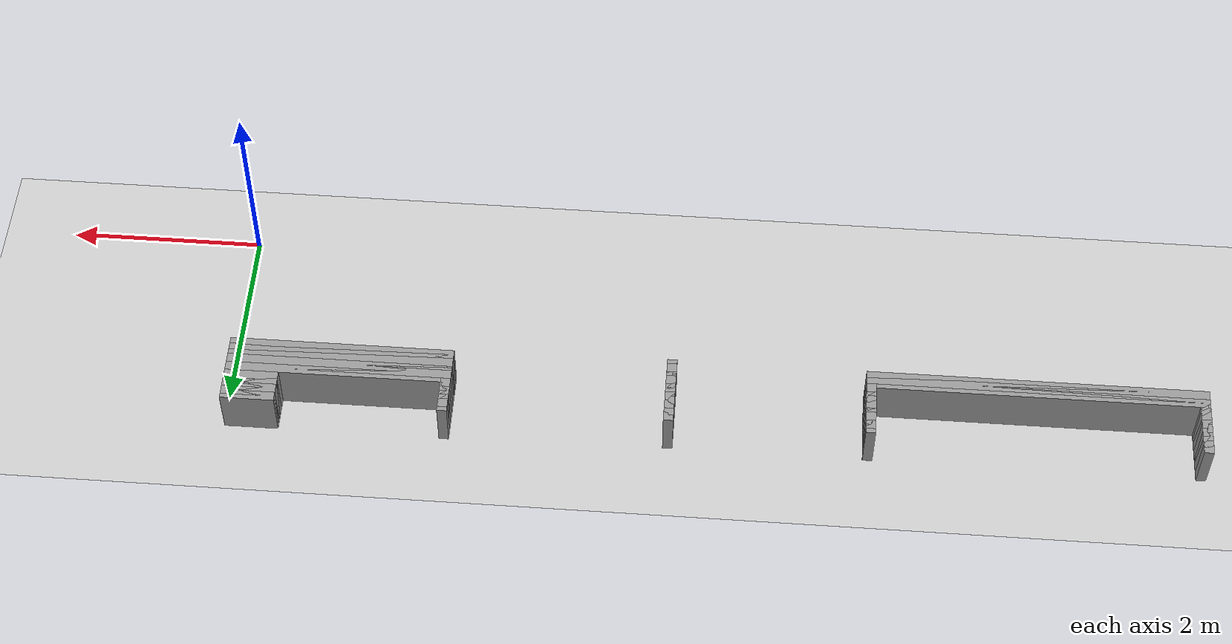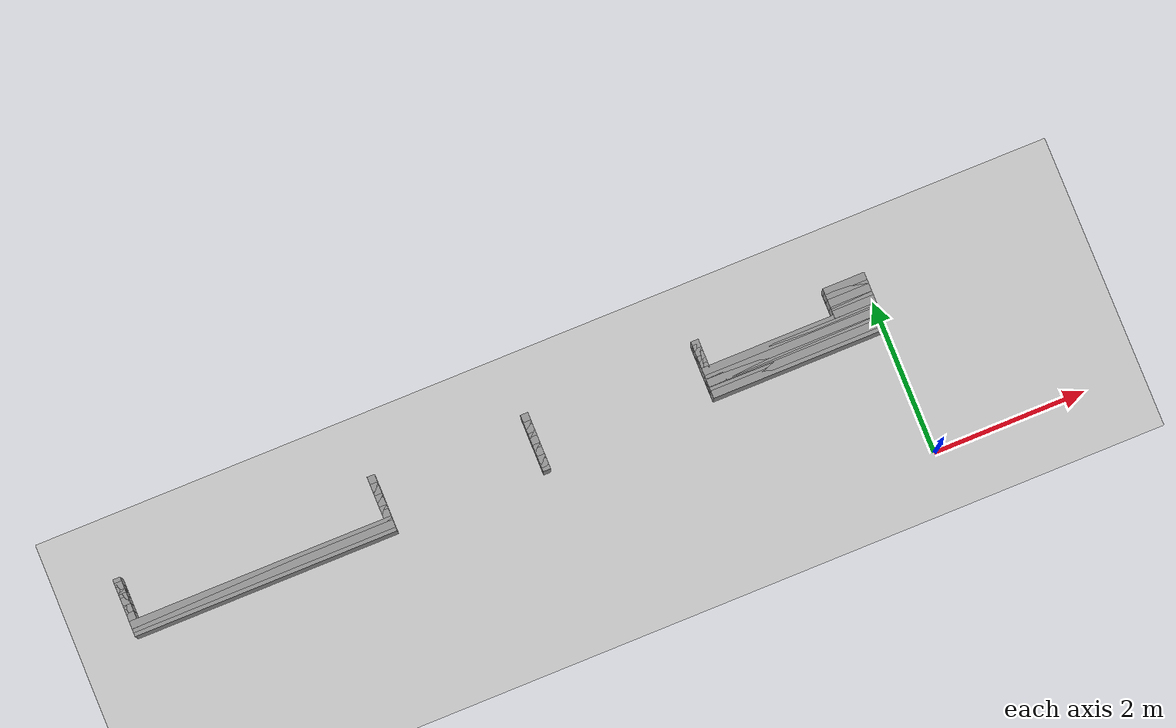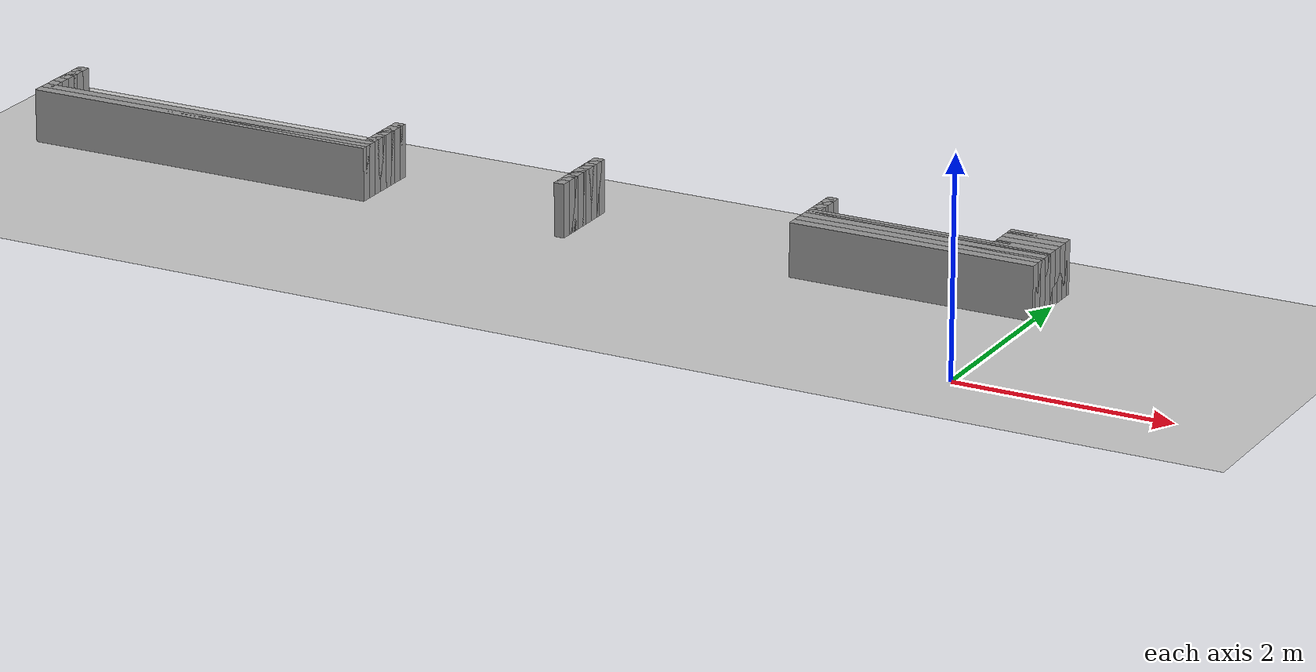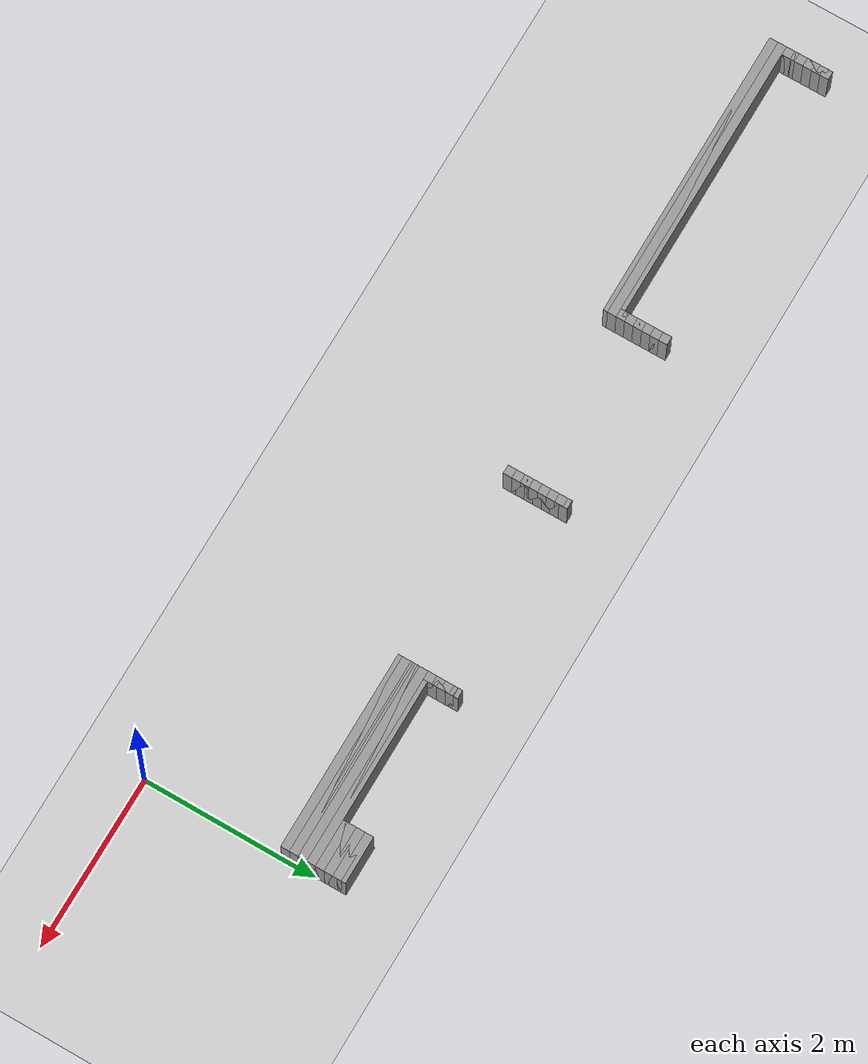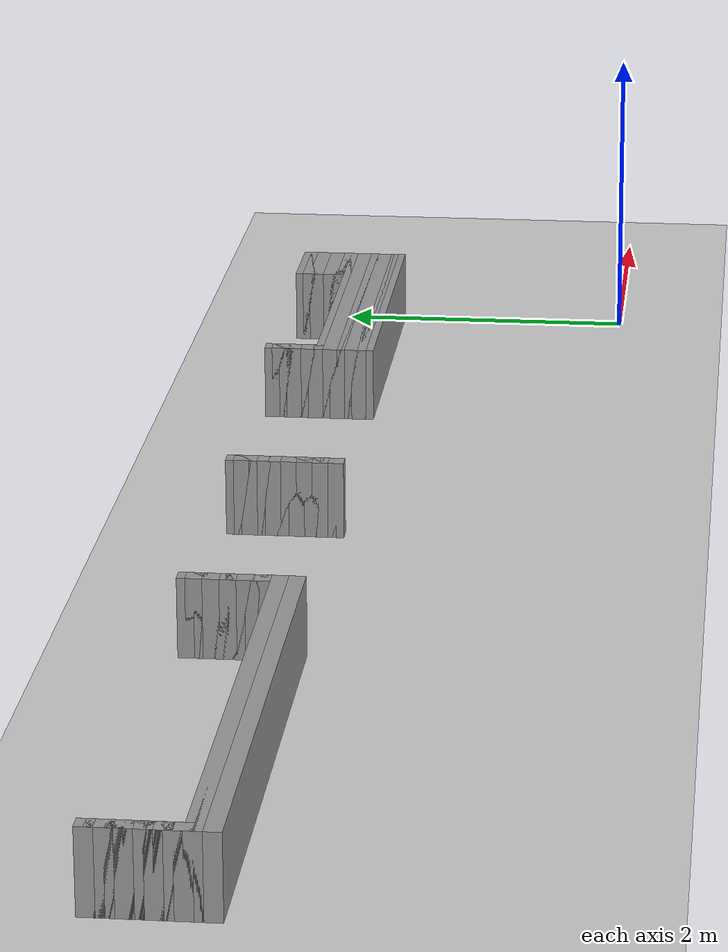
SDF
<sdf version="1.6">
 <world name="GridMap">
  <include><uri>model://sun</uri></include>
  <include><uri>model://ground_plane</uri></include>
  <model name="GridMap">
   <link name="Wall_(90.5,32.0)">
    <collision name="Wall_(90.5,32.0)_Collision">
     <geometry><box><size>0.1 0.1 0.5</size></box></geometry>
     <pose>-4.525 1.6 0.25 0 -0 0</pose>
    </collision>
    <inertial>
     <mass>0.5</mass>
     <pose>0 0.01 0 0 0 0</pose>
     <inertia><ixx>0.004</ixx><ixy>0.001</ixy><ixz>0</ixz><iyy>0.006</iyy><iyz>0</iyz><izz>0.007</izz></inertia>
    </inertial>
    <visual name="Wall_(90.5,32.0)_Visual">
     <geometry><box><size>0.1 0.1 0.5</size></box></geometry>
     <pose>-4.525 1.6 0.25 0 -0 0</pose>
     <material>
      <script><uri>file://media/materials/scripts/gazebo.material</uri><name>Gazebo/Grey</name></script>
      <ambient>1 1 1 1</ambient>
     </material>
     <meta><layer>0</layer></meta>
    </visual>
   </link>
   <link name="Wall_(164.5,32.0)">
    <collision name="Wall_(164.5,32.0)_Collision">
     <geometry><box><size>3.45 0.1 0.5</size></box></geometry>
     <pose>-8.225 1.6 0.25 0 -0 0</pose>
    </collision>
    <inertial>
     <mass>0.5</mass>
     <pose>0 0.01 0 0 0 0</pose>
     <inertia><ixx>0.004</ixx><ixy>0.001</ixy><ixz>0</ixz><iyy>0.006</iyy><iyz>0</iyz><izz>0.007</izz></inertia>
    </inertial>
    <visual name="Wall_(164.5,32.0)_Visual">
     <geometry><box><size>3.45 0.1 0.5</size></box></geometry>
     <pose>-8.225 1.6 0.25 0 -0 0</pose>
     <material>
      <script><uri>file://media/materials/scripts/gazebo.material</uri><name>Gazebo/Grey</name></script>
      <ambient>1 1 1 1</ambient>
     </material>
     <meta><layer>0</layer></meta>
    </visual>
   </link>
   <link name="Wall_(23.0,33.0)">
    <collision name="Wall_(23.0,33.0)_Collision">
     <geometry><box><size>2.3000000000000003 0.1 0.5</size></box></geometry>
     <pose>-1.1500000000000001 1.6500000000000001 0.25 0 -0 0</pose>
    </collision>
    <inertial>
     <mass>0.5</mass>
     <pose>0 0.01 0 0 0 0</pose>
     <inertia><ixx>0.004</ixx><ixy>0.001</ixy><ixz>0</ixz><iyy>0.006</iyy><iyz>0</iyz><izz>0.007</izz></inertia>
    </inertial>
    <visual name="Wall_(23.0,33.0)_Visual">
     <geometry><box><size>2.3000000000000003 0.1 0.5</size></box></geometry>
     <pose>-1.1500000000000001 1.6500000000000001 0.25 0 -0 0</pose>
     <material>
      <script><uri>file://media/materials/scripts/gazebo.material</uri><name>Gazebo/Grey</name></script>
      <ambient>1 1 1 1</ambient>
     </material>
     <meta><layer>0</layer></meta>
    </visual>
   </link>
   <link name="Wall_(90.5,33.0)">
    <collision name="Wall_(90.5,33.0)_Collision">
     <geometry><box><size>0.1 0.1 0.5</size></box></geometry>
     <pose>-4.525 1.6500000000000001 0.25 0 -0 0</pose>
    </collision>
    <inertial>
     <mass>0.5</mass>
     <pose>0 0.01 0 0 0 0</pose>
     <inertia><ixx>0.004</ixx><ixy>0.001</ixy><ixz>0</ixz><iyy>0.006</iyy><iyz>0</iyz><izz>0.007</izz></inertia>
    </inertial>
    <visual name="Wall_(90.5,33.0)_Visual">
     <geometry><box><size>0.1 0.1 0.5</size></box></geometry>
     <pose>-4.525 1.6500000000000001 0.25 0 -0 0</pose>
     <material>
      <script><uri>file://media/materials/scripts/gazebo.material</uri><name>Gazebo/Grey</name></script>
      <ambient>1 1 1 1</ambient>
     </material>
     <meta><layer>0</layer></meta>
    </visual>
   </link>
   <link name="Wall_(164.5,33.0)">
    <collision name="Wall_(164.5,33.0)_Collision">
     <geometry><box><size>3.45 0.1 0.5</size></box></geometry>
     <pose>-8.225 1.6500000000000001 0.25 0 -0 0</pose>
    </collision>
    <inertial>
     <mass>0.5</mass>
     <pose>0 0.01 0 0 0 0</pose>
     <inertia><ixx>0.004</ixx><ixy>0.001</ixy><ixz>0</ixz><iyy>0.006</iyy><iyz>0</iyz><izz>0.007</izz></inertia>
    </inertial>
    <visual name="Wall_(164.5,33.0)_Visual">
     <geometry><box><size>3.45 0.1 0.5</size></box></geometry>
     <pose>-8.225 1.6500000000000001 0.25 0 -0 0</pose>
     <material>
      <script><uri>file://media/materials/scripts/gazebo.material</uri><name>Gazebo/Grey</name></script>
      <ambient>1 1 1 1</ambient>
     </material>
     <meta><layer>0</layer></meta>
    </visual>
   </link>
   <link name="Wall_(23.0,34.0)">
    <collision name="Wall_(23.0,34.0)_Collision">
     <geometry><box><size>2.3000000000000003 0.1 0.5</size></box></geometry>
     <pose>-1.1500000000000001 1.7000000000000002 0.25 0 -0 0</pose>
    </collision>
    <inertial>
     <mass>0.5</mass>
     <pose>0 0.01 0 0 0 0</pose>
     <inertia><ixx>0.004</ixx><ixy>0.001</ixy><ixz>0</ixz><iyy>0.006</iyy><iyz>0</iyz><izz>0.007</izz></inertia>
    </inertial>
    <visual name="Wall_(23.0,34.0)_Visual">
     <geometry><box><size>2.3000000000000003 0.1 0.5</size></box></geometry>
     <pose>-1.1500000000000001 1.7000000000000002 0.25 0 -0 0</pose>
     <material>
      <script><uri>file://media/materials/scripts/gazebo.material</uri><name>Gazebo/Grey</name></script>
      <ambient>1 1 1 1</ambient>
     </material>
     <meta><layer>0</layer></meta>
    </visual>
   </link>
   <link name="Wall_(90.5,34.0)">
    <collision name="Wall_(90.5,34.0)_Collision">
     <geometry><box><size>0.1 0.1 0.5</size></box></geometry>
     <pose>-4.525 1.7000000000000002 0.25 0 -0 0</pose>
    </collision>
    <inertial>
     <mass>0.5</mass>
     <pose>0 0.01 0 0 0 0</pose>
     <inertia><ixx>0.004</ixx><ixy>0.001</ixy><ixz>0</ixz><iyy>0.006</iyy><iyz>0</iyz><izz>0.007</izz></inertia>
    </inertial>
    <visual name="Wall_(90.5,34.0)_Visual">
     <geometry><box><size>0.1 0.1 0.5</size></box></geometry>
     <pose>-4.525 1.7000000000000002 0.25 0 -0 0</pose>
     <material>
      <script><uri>file://media/materials/scripts/gazebo.material</uri><name>Gazebo/Grey</name></script>
      <ambient>1 1 1 1</ambient>
     </material>
     <meta><layer>0</layer></meta>
    </visual>
   </link>
   <link name="Wall_(164.5,34.0)">
    <collision name="Wall_(164.5,34.0)_Collision">
     <geometry><box><size>3.45 0.1 0.5</size></box></geometry>
     <pose>-8.225 1.7000000000000002 0.25 0 -0 0</pose>
    </collision>
    <inertial>
     <mass>0.5</mass>
     <pose>0 0.01 0 0 0 0</pose>
     <inertia><ixx>0.004</ixx><ixy>0.001</ixy><ixz>0</ixz><iyy>0.006</iyy><iyz>0</iyz><izz>0.007</izz></inertia>
    </inertial>
    <visual name="Wall_(164.5,34.0)_Visual">
     <geometry><box><size>3.45 0.1 0.5</size></box></geometry>
     <pose>-8.225 1.7000000000000002 0.25 0 -0 0</pose>
     <material>
      <script><uri>file://media/materials/scripts/gazebo.material</uri><name>Gazebo/Grey</name></script>
      <ambient>1 1 1 1</ambient>
     </material>
     <meta><layer>0</layer></meta>
    </visual>
   </link>
   <link name="Wall_(23.0,35.0)">
    <collision name="Wall_(23.0,35.0)_Collision">
     <geometry><box><size>2.3000000000000003 0.1 0.5</size></box></geometry>
     <pose>-1.1500000000000001 1.75 0.25 0 -0 0</pose>
    </collision>
    <inertial>
     <mass>0.5</mass>
     <pose>0 0.01 0 0 0 0</pose>
     <inertia><ixx>0.004</ixx><ixy>0.001</ixy><ixz>0</ixz><iyy>0.006</iyy><iyz>0</iyz><izz>0.007</izz></inertia>
    </inertial>
    <visual name="Wall_(23.0,35.0)_Visual">
     <geometry><box><size>2.3000000000000003 0.1 0.5</size></box></geometry>
     <pose>-1.1500000000000001 1.75 0.25 0 -0 0</pose>
     <material>
      <script><uri>file://media/materials/scripts/gazebo.material</uri><name>Gazebo/Grey</name></script>
      <ambient>1 1 1 1</ambient>
     </material>
     <meta><layer>0</layer></meta>
    </visual>
   </link>
   <link name="Wall_(90.5,35.0)">
    <collision name="Wall_(90.5,35.0)_Collision">
     <geometry><box><size>0.1 0.1 0.5</size></box></geometry>
     <pose>-4.525 1.75 0.25 0 -0 0</pose>
    </collision>
    <inertial>
     <mass>0.5</mass>
     <pose>0 0.01 0 0 0 0</pose>
     <inertia><ixx>0.004</ixx><ixy>0.001</ixy><ixz>0</ixz><iyy>0.006</iyy><iyz>0</iyz><izz>0.007</izz></inertia>
    </inertial>
    <visual name="Wall_(90.5,35.0)_Visual">
     <geometry><box><size>0.1 0.1 0.5</size></box></geometry>
     <pose>-4.525 1.75 0.25 0 -0 0</pose>
     <material>
      <script><uri>file://media/materials/scripts/gazebo.material</uri><name>Gazebo/Grey</name></script>
      <ambient>1 1 1 1</ambient>
     </material>
     <meta><layer>0</layer></meta>
    </visual>
   </link>
   <link name="Wall_(131.0,35.0)">
    <collision name="Wall_(131.0,35.0)_Collision">
     <geometry><box><size>0.1 0.1 0.5</size></box></geometry>
     <pose>-6.550000000000001 1.75 0.25 0 -0 0</pose>
    </collision>
    <inertial>
     <mass>0.5</mass>
     <pose>0 0.01 0 0 0 0</pose>
     <inertia><ixx>0.004</ixx><ixy>0.001</ixy><ixz>0</ixz><iyy>0.006</iyy><iyz>0</iyz><izz>0.007</izz></inertia>
    </inertial>
    <visual name="Wall_(131.0,35.0)_Visual">
     <geometry><box><size>0.1 0.1 0.5</size></box></geometry>
     <pose>-6.550000000000001 1.75 0.25 0 -0 0</pose>
     <material>
      <script><uri>file://media/materials/scripts/gazebo.material</uri><name>Gazebo/Grey</name></script>
      <ambient>1 1 1 1</ambient>
     </material>
     <meta><layer>0</layer></meta>
    </visual>
   </link>
   <link name="Wall_(198.0,35.0)">
    <collision name="Wall_(198.0,35.0)_Collision">
     <geometry><box><size>0.1 0.1 0.5</size></box></geometry>
     <pose>-9.9 1.75 0.25 0 -0 0</pose>
    </collision>
    <inertial>
     <mass>0.5</mass>
     <pose>0 0.01 0 0 0 0</pose>
     <inertia><ixx>0.004</ixx><ixy>0.001</ixy><ixz>0</ixz><iyy>0.006</iyy><iyz>0</iyz><izz>0.007</izz></inertia>
    </inertial>
    <visual name="Wall_(198.0,35.0)_Visual">
     <geometry><box><size>0.1 0.1 0.5</size></box></geometry>
     <pose>-9.9 1.75 0.25 0 -0 0</pose>
     <material>
      <script><uri>file://media/materials/scripts/gazebo.material</uri><name>Gazebo/Grey</name></script>
      <ambient>1 1 1 1</ambient>
     </material>
     <meta><layer>0</layer></meta>
    </visual>
   </link>
   <link name="Wall_(23.0,36.0)">
    <collision name="Wall_(23.0,36.0)_Collision">
     <geometry><box><size>2.3000000000000003 0.1 0.5</size></box></geometry>
     <pose>-1.1500000000000001 1.8 0.25 0 -0 0</pose>
    </collision>
    <inertial>
     <mass>0.5</mass>
     <pose>0 0.01 0 0 0 0</pose>
     <inertia><ixx>0.004</ixx><ixy>0.001</ixy><ixz>0</ixz><iyy>0.006</iyy><iyz>0</iyz><izz>0.007</izz></inertia>
    </inertial>
    <visual name="Wall_(23.0,36.0)_Visual">
     <geometry><box><size>2.3000000000000003 0.1 0.5</size></box></geometry>
     <pose>-1.1500000000000001 1.8 0.25 0 -0 0</pose>
     <material>
      <script><uri>file://media/materials/scripts/gazebo.material</uri><name>Gazebo/Grey</name></script>
      <ambient>1 1 1 1</ambient>
     </material>
     <meta><layer>0</layer></meta>
    </visual>
   </link>
   <link name="Wall_(90.5,36.0)">
    <collision name="Wall_(90.5,36.0)_Collision">
     <geometry><box><size>0.1 0.1 0.5</size></box></geometry>
     <pose>-4.525 1.8 0.25 0 -0 0</pose>
    </collision>
    <inertial>
     <mass>0.5</mass>
     <pose>0 0.01 0 0 0 0</pose>
     <inertia><ixx>0.004</ixx><ixy>0.001</ixy><ixz>0</ixz><iyy>0.006</iyy><iyz>0</iyz><izz>0.007</izz></inertia>
    </inertial>
    <visual name="Wall_(90.5,36.0)_Visual">
     <geometry><box><size>0.1 0.1 0.5</size></box></geometry>
     <pose>-4.525 1.8 0.25 0 -0 0</pose>
     <material>
      <script><uri>file://media/materials/scripts/gazebo.material</uri><name>Gazebo/Grey</name></script>
      <ambient>1 1 1 1</ambient>
     </material>
     <meta><layer>0</layer></meta>
    </visual>
   </link>
   <link name="Wall_(131.0,36.0)">
    <collision name="Wall_(131.0,36.0)_Collision">
     <geometry><box><size>0.1 0.1 0.5</size></box></geometry>
     <pose>-6.550000000000001 1.8 0.25 0 -0 0</pose>
    </collision>
    <inertial>
     <mass>0.5</mass>
     <pose>0 0.01 0 0 0 0</pose>
     <inertia><ixx>0.004</ixx><ixy>0.001</ixy><ixz>0</ixz><iyy>0.006</iyy><iyz>0</iyz><izz>0.007</izz></inertia>
    </inertial>
    <visual name="Wall_(131.0,36.0)_Visual">
     <geometry><box><size>0.1 0.1 0.5</size></box></geometry>
     <pose>-6.550000000000001 1.8 0.25 0 -0 0</pose>
     <material>
      <script><uri>file://media/materials/scripts/gazebo.material</uri><name>Gazebo/Grey</name></script>
      <ambient>1 1 1 1</ambient>
     </material>
     <meta><layer>0</layer></meta>
    </visual>
   </link>
   <link name="Wall_(198.0,36.0)">
    <collision name="Wall_(198.0,36.0)_Collision">
     <geometry><box><size>0.1 0.1 0.5</size></box></geometry>
     <pose>-9.9 1.8 0.25 0 -0 0</pose>
    </collision>
    <inertial>
     <mass>0.5</mass>
     <pose>0 0.01 0 0 0 0</pose>
     <inertia><ixx>0.004</ixx><ixy>0.001</ixy><ixz>0</ixz><iyy>0.006</iyy><iyz>0</iyz><izz>0.007</izz></inertia>
    </inertial>
    <visual name="Wall_(198.0,36.0)_Visual">
     <geometry><box><size>0.1 0.1 0.5</size></box></geometry>
     <pose>-9.9 1.8 0.25 0 -0 0</pose>
     <material>
      <script><uri>file://media/materials/scripts/gazebo.material</uri><name>Gazebo/Grey</name></script>
      <ambient>1 1 1 1</ambient>
     </material>
     <meta><layer>0</layer></meta>
    </visual>
   </link>
   <link name="Wall_(23.0,37.0)">
    <collision name="Wall_(23.0,37.0)_Collision">
     <geometry><box><size>2.3000000000000003 0.1 0.5</size></box></geometry>
     <pose>-1.1500000000000001 1.85 0.25 0 -0 0</pose>
    </collision>
    <inertial>
     <mass>0.5</mass>
     <pose>0 0.01 0 0 0 0</pose>
     <inertia><ixx>0.004</ixx><ixy>0.001</ixy><ixz>0</ixz><iyy>0.006</iyy><iyz>0</iyz><izz>0.007</izz></inertia>
    </inertial>
    <visual name="Wall_(23.0,37.0)_Visual">
     <geometry><box><size>2.3000000000000003 0.1 0.5</size></box></geometry>
     <pose>-1.1500000000000001 1.85 0.25 0 -0 0</pose>
     <material>
      <script><uri>file://media/materials/scripts/gazebo.material</uri><name>Gazebo/Grey</name></script>
      <ambient>1 1 1 1</ambient>
     </material>
     <meta><layer>0</layer></meta>
    </visual>
   </link>
   <link name="Wall_(90.5,37.0)">
    <collision name="Wall_(90.5,37.0)_Collision">
     <geometry><box><size>0.1 0.1 0.5</size></box></geometry>
     <pose>-4.525 1.85 0.25 0 -0 0</pose>
    </collision>
    <inertial>
     <mass>0.5</mass>
     <pose>0 0.01 0 0 0 0</pose>
     <inertia><ixx>0.004</ixx><ixy>0.001</ixy><ixz>0</ixz><iyy>0.006</iyy><iyz>0</iyz><izz>0.007</izz></inertia>
    </inertial>
    <visual name="Wall_(90.5,37.0)_Visual">
     <geometry><box><size>0.1 0.1 0.5</size></box></geometry>
     <pose>-4.525 1.85 0.25 0 -0 0</pose>
     <material>
      <script><uri>file://media/materials/scripts/gazebo.material</uri><name>Gazebo/Grey</name></script>
      <ambient>1 1 1 1</ambient>
     </material>
     <meta><layer>0</layer></meta>
    </visual>
   </link>
   <link name="Wall_(131.0,37.0)">
    <collision name="Wall_(131.0,37.0)_Collision">
     <geometry><box><size>0.1 0.1 0.5</size></box></geometry>
     <pose>-6.550000000000001 1.85 0.25 0 -0 0</pose>
    </collision>
    <inertial>
     <mass>0.5</mass>
     <pose>0 0.01 0 0 0 0</pose>
     <inertia><ixx>0.004</ixx><ixy>0.001</ixy><ixz>0</ixz><iyy>0.006</iyy><iyz>0</iyz><izz>0.007</izz></inertia>
    </inertial>
    <visual name="Wall_(131.0,37.0)_Visual">
     <geometry><box><size>0.1 0.1 0.5</size></box></geometry>
     <pose>-6.550000000000001 1.85 0.25 0 -0 0</pose>
     <material>
      <script><uri>file://media/materials/scripts/gazebo.material</uri><name>Gazebo/Grey</name></script>
      <ambient>1 1 1 1</ambient>
     </material>
     <meta><layer>0</layer></meta>
    </visual>
   </link>
   <link name="Wall_(198.0,37.0)">
    <collision name="Wall_(198.0,37.0)_Collision">
     <geometry><box><size>0.1 0.1 0.5</size></box></geometry>
     <pose>-9.9 1.85 0.25 0 -0 0</pose>
    </collision>
    <inertial>
     <mass>0.5</mass>
     <pose>0 0.01 0 0 0 0</pose>
     <inertia><ixx>0.004</ixx><ixy>0.001</ixy><ixz>0</ixz><iyy>0.006</iyy><iyz>0</iyz><izz>0.007</izz></inertia>
    </inertial>
    <visual name="Wall_(198.0,37.0)_Visual">
     <geometry><box><size>0.1 0.1 0.5</size></box></geometry>
     <pose>-9.9 1.85 0.25 0 -0 0</pose>
     <material>
      <script><uri>file://media/materials/scripts/gazebo.material</uri><name>Gazebo/Grey</name></script>
      <ambient>1 1 1 1</ambient>
     </material>
     <meta><layer>0</layer></meta>
    </visual>
   </link>
   <link name="Wall_(23.0,38.0)">
    <collision name="Wall_(23.0,38.0)_Collision">
     <geometry><box><size>2.3000000000000003 0.1 0.5</size></box></geometry>
     <pose>-1.1500000000000001 1.9000000000000001 0.25 0 -0 0</pose>
    </collision>
    <inertial>
     <mass>0.5</mass>
     <pose>0 0.01 0 0 0 0</pose>
     <inertia><ixx>0.004</ixx><ixy>0.001</ixy><ixz>0</ixz><iyy>0.006</iyy><iyz>0</iyz><izz>0.007</izz></inertia>
    </inertial>
    <visual name="Wall_(23.0,38.0)_Visual">
     <geometry><box><size>2.3000000000000003 0.1 0.5</size></box></geometry>
     <pose>-1.1500000000000001 1.9000000000000001 0.25 0 -0 0</pose>
     <material>
      <script><uri>file://media/materials/scripts/gazebo.material</uri><name>Gazebo/Grey</name></script>
      <ambient>1 1 1 1</ambient>
     </material>
     <meta><layer>0</layer></meta>
    </visual>
   </link>
   <link name="Wall_(90.5,38.0)">
    <collision name="Wall_(90.5,38.0)_Collision">
     <geometry><box><size>0.1 0.1 0.5</size></box></geometry>
     <pose>-4.525 1.9000000000000001 0.25 0 -0 0</pose>
    </collision>
    <inertial>
     <mass>0.5</mass>
     <pose>0 0.01 0 0 0 0</pose>
     <inertia><ixx>0.004</ixx><ixy>0.001</ixy><ixz>0</ixz><iyy>0.006</iyy><iyz>0</iyz><izz>0.007</izz></inertia>
    </inertial>
    <visual name="Wall_(90.5,38.0)_Visual">
     <geometry><box><size>0.1 0.1 0.5</size></box></geometry>
     <pose>-4.525 1.9000000000000001 0.25 0 -0 0</pose>
     <material>
      <script><uri>file://media/materials/scripts/gazebo.material</uri><name>Gazebo/Grey</name></script>
      <ambient>1 1 1 1</ambient>
     </material>
     <meta><layer>0</layer></meta>
    </visual>
   </link>
   <link name="Wall_(131.0,38.0)">
    <collision name="Wall_(131.0,38.0)_Collision">
     <geometry><box><size>0.1 0.1 0.5</size></box></geometry>
     <pose>-6.550000000000001 1.9000000000000001 0.25 0 -0 0</pose>
    </collision>
    <inertial>
     <mass>0.5</mass>
     <pose>0 0.01 0 0 0 0</pose>
     <inertia><ixx>0.004</ixx><ixy>0.001</ixy><ixz>0</ixz><iyy>0.006</iyy><iyz>0</iyz><izz>0.007</izz></inertia>
    </inertial>
    <visual name="Wall_(131.0,38.0)_Visual">
     <geometry><box><size>0.1 0.1 0.5</size></box></geometry>
     <pose>-6.550000000000001 1.9000000000000001 0.25 0 -0 0</pose>
     <material>
      <script><uri>file://media/materials/scripts/gazebo.material</uri><name>Gazebo/Grey</name></script>
      <ambient>1 1 1 1</ambient>
     </material>
     <meta><layer>0</layer></meta>
    </visual>
   </link>
   <link name="Wall_(198.0,38.0)">
    <collision name="Wall_(198.0,38.0)_Collision">
     <geometry><box><size>0.1 0.1 0.5</size></box></geometry>
     <pose>-9.9 1.9000000000000001 0.25 0 -0 0</pose>
    </collision>
    <inertial>
     <mass>0.5</mass>
     <pose>0 0.01 0 0 0 0</pose>
     <inertia><ixx>0.004</ixx><ixy>0.001</ixy><ixz>0</ixz><iyy>0.006</iyy><iyz>0</iyz><izz>0.007</izz></inertia>
    </inertial>
    <visual name="Wall_(198.0,38.0)_Visual">
     <geometry><box><size>0.1 0.1 0.5</size></box></geometry>
     <pose>-9.9 1.9000000000000001 0.25 0 -0 0</pose>
     <material>
      <script><uri>file://media/materials/scripts/gazebo.material</uri><name>Gazebo/Grey</name></script>
      <ambient>1 1 1 1</ambient>
     </material>
     <meta><layer>0</layer></meta>
    </visual>
   </link>
   <link name="Wall_(23.0,39.0)">
    <collision name="Wall_(23.0,39.0)_Collision">
     <geometry><box><size>2.3000000000000003 0.1 0.5</size></box></geometry>
     <pose>-1.1500000000000001 1.9500000000000002 0.25 0 -0 0</pose>
    </collision>
    <inertial>
     <mass>0.5</mass>
     <pose>0 0.01 0 0 0 0</pose>
     <inertia><ixx>0.004</ixx><ixy>0.001</ixy><ixz>0</ixz><iyy>0.006</iyy><iyz>0</iyz><izz>0.007</izz></inertia>
    </inertial>
    <visual name="Wall_(23.0,39.0)_Visual">
     <geometry><box><size>2.3000000000000003 0.1 0.5</size></box></geometry>
     <pose>-1.1500000000000001 1.9500000000000002 0.25 0 -0 0</pose>
     <material>
      <script><uri>file://media/materials/scripts/gazebo.material</uri><name>Gazebo/Grey</name></script>
      <ambient>1 1 1 1</ambient>
     </material>
     <meta><layer>0</layer></meta>
    </visual>
   </link>
   <link name="Wall_(90.5,39.0)">
    <collision name="Wall_(90.5,39.0)_Collision">
     <geometry><box><size>0.1 0.1 0.5</size></box></geometry>
     <pose>-4.525 1.9500000000000002 0.25 0 -0 0</pose>
    </collision>
    <inertial>
     <mass>0.5</mass>
     <pose>0 0.01 0 0 0 0</pose>
     <inertia><ixx>0.004</ixx><ixy>0.001</ixy><ixz>0</ixz><iyy>0.006</iyy><iyz>0</iyz><izz>0.007</izz></inertia>
    </inertial>
    <visual name="Wall_(90.5,39.0)_Visual">
     <geometry><box><size>0.1 0.1 0.5</size></box></geometry>
     <pose>-4.525 1.9500000000000002 0.25 0 -0 0</pose>
     <material>
      <script><uri>file://media/materials/scripts/gazebo.material</uri><name>Gazebo/Grey</name></script>
      <ambient>1 1 1 1</ambient>
     </material>
     <meta><layer>0</layer></meta>
    </visual>
   </link>
   <link name="Wall_(131.0,39.0)">
    <collision name="Wall_(131.0,39.0)_Collision">
     <geometry><box><size>0.1 0.1 0.5</size></box></geometry>
     <pose>-6.550000000000001 1.9500000000000002 0.25 0 -0 0</pose>
    </collision>
    <inertial>
     <mass>0.5</mass>
     <pose>0 0.01 0 0 0 0</pose>
     <inertia><ixx>0.004</ixx><ixy>0.001</ixy><ixz>0</ixz><iyy>0.006</iyy><iyz>0</iyz><izz>0.007</izz></inertia>
    </inertial>
    <visual name="Wall_(131.0,39.0)_Visual">
     <geometry><box><size>0.1 0.1 0.5</size></box></geometry>
     <pose>-6.550000000000001 1.9500000000000002 0.25 0 -0 0</pose>
     <material>
      <script><uri>file://media/materials/scripts/gazebo.material</uri><name>Gazebo/Grey</name></script>
      <ambient>1 1 1 1</ambient>
     </material>
     <meta><layer>0</layer></meta>
    </visual>
   </link>
   <link name="Wall_(198.0,39.0)">
    <collision name="Wall_(198.0,39.0)_Collision">
     <geometry><box><size>0.1 0.1 0.5</size></box></geometry>
     <pose>-9.9 1.9500000000000002 0.25 0 -0 0</pose>
    </collision>
    <inertial>
     <mass>0.5</mass>
     <pose>0 0.01 0 0 0 0</pose>
     <inertia><ixx>0.004</ixx><ixy>0.001</ixy><ixz>0</ixz><iyy>0.006</iyy><iyz>0</iyz><izz>0.007</izz></inertia>
    </inertial>
    <visual name="Wall_(198.0,39.0)_Visual">
     <geometry><box><size>0.1 0.1 0.5</size></box></geometry>
     <pose>-9.9 1.9500000000000002 0.25 0 -0 0</pose>
     <material>
      <script><uri>file://media/materials/scripts/gazebo.material</uri><name>Gazebo/Grey</name></script>
      <ambient>1 1 1 1</ambient>
     </material>
     <meta><layer>0</layer></meta>
    </visual>
   </link>
   <link name="Wall_(5.5,40.0)">
    <collision name="Wall_(5.5,40.0)_Collision">
     <geometry><box><size>0.55 0.1 0.5</size></box></geometry>
     <pose>-0.275 2.0 0.25 0 -0 0</pose>
    </collision>
    <inertial>
     <mass>0.5</mass>
     <pose>0 0.01 0 0 0 0</pose>
     <inertia><ixx>0.004</ixx><ixy>0.001</ixy><ixz>0</ixz><iyy>0.006</iyy><iyz>0</iyz><izz>0.007</izz></inertia>
    </inertial>
    <visual name="Wall_(5.5,40.0)_Visual">
     <geometry><box><size>0.55 0.1 0.5</size></box></geometry>
     <pose>-0.275 2.0 0.25 0 -0 0</pose>
     <material>
      <script><uri>file://media/materials/scripts/gazebo.material</uri><name>Gazebo/Grey</name></script>
      <ambient>1 1 1 1</ambient>
     </material>
     <meta><layer>0</layer></meta>
    </visual>
   </link>
   <link name="Wall_(45.0,40.0)">
    <collision name="Wall_(45.0,40.0)_Collision">
     <geometry><box><size>0.1 0.1 0.5</size></box></geometry>
     <pose>-2.25 2.0 0.25 0 -0 0</pose>
    </collision>
    <inertial>
     <mass>0.5</mass>
     <pose>0 0.01 0 0 0 0</pose>
     <inertia><ixx>0.004</ixx><ixy>0.001</ixy><ixz>0</ixz><iyy>0.006</iyy><iyz>0</iyz><izz>0.007</izz></inertia>
    </inertial>
    <visual name="Wall_(45.0,40.0)_Visual">
     <geometry><box><size>0.1 0.1 0.5</size></box></geometry>
     <pose>-2.25 2.0 0.25 0 -0 0</pose>
     <material>
      <script><uri>file://media/materials/scripts/gazebo.material</uri><name>Gazebo/Grey</name></script>
      <ambient>1 1 1 1</ambient>
     </material>
     <meta><layer>0</layer></meta>
    </visual>
   </link>
   <link name="Wall_(90.5,40.0)">
    <collision name="Wall_(90.5,40.0)_Collision">
     <geometry><box><size>0.1 0.1 0.5</size></box></geometry>
     <pose>-4.525 2.0 0.25 0 -0 0</pose>
    </collision>
    <inertial>
     <mass>0.5</mass>
     <pose>0 0.01 0 0 0 0</pose>
     <inertia><ixx>0.004</ixx><ixy>0.001</ixy><ixz>0</ixz><iyy>0.006</iyy><iyz>0</iyz><izz>0.007</izz></inertia>
    </inertial>
    <visual name="Wall_(90.5,40.0)_Visual">
     <geometry><box><size>0.1 0.1 0.5</size></box></geometry>
     <pose>-4.525 2.0 0.25 0 -0 0</pose>
     <material>
      <script><uri>file://media/materials/scripts/gazebo.material</uri><name>Gazebo/Grey</name></script>
      <ambient>1 1 1 1</ambient>
     </material>
     <meta><layer>0</layer></meta>
    </visual>
   </link>
   <link name="Wall_(131.0,40.0)">
    <collision name="Wall_(131.0,40.0)_Collision">
     <geometry><box><size>0.1 0.1 0.5</size></box></geometry>
     <pose>-6.550000000000001 2.0 0.25 0 -0 0</pose>
    </collision>
    <inertial>
     <mass>0.5</mass>
     <pose>0 0.01 0 0 0 0</pose>
     <inertia><ixx>0.004</ixx><ixy>0.001</ixy><ixz>0</ixz><iyy>0.006</iyy><iyz>0</iyz><izz>0.007</izz></inertia>
    </inertial>
    <visual name="Wall_(131.0,40.0)_Visual">
     <geometry><box><size>0.1 0.1 0.5</size></box></geometry>
     <pose>-6.550000000000001 2.0 0.25 0 -0 0</pose>
     <material>
      <script><uri>file://media/materials/scripts/gazebo.material</uri><name>Gazebo/Grey</name></script>
      <ambient>1 1 1 1</ambient>
     </material>
     <meta><layer>0</layer></meta>
    </visual>
   </link>
   <link name="Wall_(198.0,40.0)">
    <collision name="Wall_(198.0,40.0)_Collision">
     <geometry><box><size>0.1 0.1 0.5</size></box></geometry>
     <pose>-9.9 2.0 0.25 0 -0 0</pose>
    </collision>
    <inertial>
     <mass>0.5</mass>
     <pose>0 0.01 0 0 0 0</pose>
     <inertia><ixx>0.004</ixx><ixy>0.001</ixy><ixz>0</ixz><iyy>0.006</iyy><iyz>0</iyz><izz>0.007</izz></inertia>
    </inertial>
    <visual name="Wall_(198.0,40.0)_Visual">
     <geometry><box><size>0.1 0.1 0.5</size></box></geometry>
     <pose>-9.9 2.0 0.25 0 -0 0</pose>
     <material>
      <script><uri>file://media/materials/scripts/gazebo.material</uri><name>Gazebo/Grey</name></script>
      <ambient>1 1 1 1</ambient>
     </material>
     <meta><layer>0</layer></meta>
    </visual>
   </link>
   <link name="Wall_(5.5,41.0)">
    <collision name="Wall_(5.5,41.0)_Collision">
     <geometry><box><size>0.55 0.1 0.5</size></box></geometry>
     <pose>-0.275 2.0500000000000003 0.25 0 -0 0</pose>
    </collision>
    <inertial>
     <mass>0.5</mass>
     <pose>0 0.01 0 0 0 0</pose>
     <inertia><ixx>0.004</ixx><ixy>0.001</ixy><ixz>0</ixz><iyy>0.006</iyy><iyz>0</iyz><izz>0.007</izz></inertia>
    </inertial>
    <visual name="Wall_(5.5,41.0)_Visual">
     <geometry><box><size>0.55 0.1 0.5</size></box></geometry>
     <pose>-0.275 2.0500000000000003 0.25 0 -0 0</pose>
     <material>
      <script><uri>file://media/materials/scripts/gazebo.material</uri><name>Gazebo/Grey</name></script>
      <ambient>1 1 1 1</ambient>
     </material>
     <meta><layer>0</layer></meta>
    </visual>
   </link>
   <link name="Wall_(45.0,41.0)">
    <collision name="Wall_(45.0,41.0)_Collision">
     <geometry><box><size>0.1 0.1 0.5</size></box></geometry>
     <pose>-2.25 2.0500000000000003 0.25 0 -0 0</pose>
    </collision>
    <inertial>
     <mass>0.5</mass>
     <pose>0 0.01 0 0 0 0</pose>
     <inertia><ixx>0.004</ixx><ixy>0.001</ixy><ixz>0</ixz><iyy>0.006</iyy><iyz>0</iyz><izz>0.007</izz></inertia>
    </inertial>
    <visual name="Wall_(45.0,41.0)_Visual">
     <geometry><box><size>0.1 0.1 0.5</size></box></geometry>
     <pose>-2.25 2.0500000000000003 0.25 0 -0 0</pose>
     <material>
      <script><uri>file://media/materials/scripts/gazebo.material</uri><name>Gazebo/Grey</name></script>
      <ambient>1 1 1 1</ambient>
     </material>
     <meta><layer>0</layer></meta>
    </visual>
   </link>
   <link name="Wall_(90.5,41.0)">
    <collision name="Wall_(90.5,41.0)_Collision">
     <geometry><box><size>0.1 0.1 0.5</size></box></geometry>
     <pose>-4.525 2.0500000000000003 0.25 0 -0 0</pose>
    </collision>
    <inertial>
     <mass>0.5</mass>
     <pose>0 0.01 0 0 0 0</pose>
     <inertia><ixx>0.004</ixx><ixy>0.001</ixy><ixz>0</ixz><iyy>0.006</iyy><iyz>0</iyz><izz>0.007</izz></inertia>
    </inertial>
    <visual name="Wall_(90.5,41.0)_Visual">
     <geometry><box><size>0.1 0.1 0.5</size></box></geometry>
     <pose>-4.525 2.0500000000000003 0.25 0 -0 0</pose>
     <material>
      <script><uri>file://media/materials/scripts/gazebo.material</uri><name>Gazebo/Grey</name></script>
      <ambient>1 1 1 1</ambient>
     </material>
     <meta><layer>0</layer></meta>
    </visual>
   </link>
   <link name="Wall_(131.0,41.0)">
    <collision name="Wall_(131.0,41.0)_Collision">
     <geometry><box><size>0.1 0.1 0.5</size></box></geometry>
     <pose>-6.550000000000001 2.0500000000000003 0.25 0 -0 0</pose>
    </collision>
    <inertial>
     <mass>0.5</mass>
     <pose>0 0.01 0 0 0 0</pose>
     <inertia><ixx>0.004</ixx><ixy>0.001</ixy><ixz>0</ixz><iyy>0.006</iyy><iyz>0</iyz><izz>0.007</izz></inertia>
    </inertial>
    <visual name="Wall_(131.0,41.0)_Visual">
     <geometry><box><size>0.1 0.1 0.5</size></box></geometry>
     <pose>-6.550000000000001 2.0500000000000003 0.25 0 -0 0</pose>
     <material>
      <script><uri>file://media/materials/scripts/gazebo.material</uri><name>Gazebo/Grey</name></script>
      <ambient>1 1 1 1</ambient>
     </material>
     <meta><layer>0</layer></meta>
    </visual>
   </link>
   <link name="Wall_(198.0,41.0)">
    <collision name="Wall_(198.0,41.0)_Collision">
     <geometry><box><size>0.1 0.1 0.5</size></box></geometry>
     <pose>-9.9 2.0500000000000003 0.25 0 -0 0</pose>
    </collision>
    <inertial>
     <mass>0.5</mass>
     <pose>0 0.01 0 0 0 0</pose>
     <inertia><ixx>0.004</ixx><ixy>0.001</ixy><ixz>0</ixz><iyy>0.006</iyy><iyz>0</iyz><izz>0.007</izz></inertia>
    </inertial>
    <visual name="Wall_(198.0,41.0)_Visual">
     <geometry><box><size>0.1 0.1 0.5</size></box></geometry>
     <pose>-9.9 2.0500000000000003 0.25 0 -0 0</pose>
     <material>
      <script><uri>file://media/materials/scripts/gazebo.material</uri><name>Gazebo/Grey</name></script>
      <ambient>1 1 1 1</ambient>
     </material>
     <meta><layer>0</layer></meta>
    </visual>
   </link>
   <link name="Wall_(5.5,42.0)">
    <collision name="Wall_(5.5,42.0)_Collision">
     <geometry><box><size>0.55 0.1 0.5</size></box></geometry>
     <pose>-0.275 2.1 0.25 0 -0 0</pose>
    </collision>
    <inertial>
     <mass>0.5</mass>
     <pose>0 0.01 0 0 0 0</pose>
     <inertia><ixx>0.004</ixx><ixy>0.001</ixy><ixz>0</ixz><iyy>0.006</iyy><iyz>0</iyz><izz>0.007</izz></inertia>
    </inertial>
    <visual name="Wall_(5.5,42.0)_Visual">
     <geometry><box><size>0.55 0.1 0.5</size></box></geometry>
     <pose>-0.275 2.1 0.25 0 -0 0</pose>
     <material>
      <script><uri>file://media/materials/scripts/gazebo.material</uri><name>Gazebo/Grey</name></script>
      <ambient>1 1 1 1</ambient>
     </material>
     <meta><layer>0</layer></meta>
    </visual>
   </link>
   <link name="Wall_(45.0,42.0)">
    <collision name="Wall_(45.0,42.0)_Collision">
     <geometry><box><size>0.1 0.1 0.5</size></box></geometry>
     <pose>-2.25 2.1 0.25 0 -0 0</pose>
    </collision>
    <inertial>
     <mass>0.5</mass>
     <pose>0 0.01 0 0 0 0</pose>
     <inertia><ixx>0.004</ixx><ixy>0.001</ixy><ixz>0</ixz><iyy>0.006</iyy><iyz>0</iyz><izz>0.007</izz></inertia>
    </inertial>
    <visual name="Wall_(45.0,42.0)_Visual">
     <geometry><box><size>0.1 0.1 0.5</size></box></geometry>
     <pose>-2.25 2.1 0.25 0 -0 0</pose>
     <material>
      <script><uri>file://media/materials/scripts/gazebo.material</uri><name>Gazebo/Grey</name></script>
      <ambient>1 1 1 1</ambient>
     </material>
     <meta><layer>0</layer></meta>
    </visual>
   </link>
   <link name="Wall_(90.5,42.0)">
    <collision name="Wall_(90.5,42.0)_Collision">
     <geometry><box><size>0.1 0.1 0.5</size></box></geometry>
     <pose>-4.525 2.1 0.25 0 -0 0</pose>
    </collision>
    <inertial>
     <mass>0.5</mass>
     <pose>0 0.01 0 0 0 0</pose>
     <inertia><ixx>0.004</ixx><ixy>0.001</ixy><ixz>0</ixz><iyy>0.006</iyy><iyz>0</iyz><izz>0.007</izz></inertia>
    </inertial>
    <visual name="Wall_(90.5,42.0)_Visual">
     <geometry><box><size>0.1 0.1 0.5</size></box></geometry>
     <pose>-4.525 2.1 0.25 0 -0 0</pose>
     <material>
      <script><uri>file://media/materials/scripts/gazebo.material</uri><name>Gazebo/Grey</name></script>
      <ambient>1 1 1 1</ambient>
     </material>
     <meta><layer>0</layer></meta>
    </visual>
   </link>
   <link name="Wall_(131.0,42.0)">
    <collision name="Wall_(131.0,42.0)_Collision">
     <geometry><box><size>0.1 0.1 0.5</size></box></geometry>
     <pose>-6.550000000000001 2.1 0.25 0 -0 0</pose>
    </collision>
    <inertial>
     <mass>0.5</mass>
     <pose>0 0.01 0 0 0 0</pose>
     <inertia><ixx>0.004</ixx><ixy>0.001</ixy><ixz>0</ixz><iyy>0.006</iyy><iyz>0</iyz><izz>0.007</izz></inertia>
    </inertial>
    <visual name="Wall_(131.0,42.0)_Visual">
     <geometry><box><size>0.1 0.1 0.5</size></box></geometry>
     <pose>-6.550000000000001 2.1 0.25 0 -0 0</pose>
     <material>
      <script><uri>file://media/materials/scripts/gazebo.material</uri><name>Gazebo/Grey</name></script>
      <ambient>1 1 1 1</ambient>
     </material>
     <meta><layer>0</layer></meta>
    </visual>
   </link>
   <link name="Wall_(198.0,42.0)">
    <collision name="Wall_(198.0,42.0)_Collision">
     <geometry><box><size>0.1 0.1 0.5</size></box></geometry>
     <pose>-9.9 2.1 0.25 0 -0 0</pose>
    </collision>
    <inertial>
     <mass>0.5</mass>
     <pose>0 0.01 0 0 0 0</pose>
     <inertia><ixx>0.004</ixx><ixy>0.001</ixy><ixz>0</ixz><iyy>0.006</iyy><iyz>0</iyz><izz>0.007</izz></inertia>
    </inertial>
    <visual name="Wall_(198.0,42.0)_Visual">
     <geometry><box><size>0.1 0.1 0.5</size></box></geometry>
     <pose>-9.9 2.1 0.25 0 -0 0</pose>
     <material>
      <script><uri>file://media/materials/scripts/gazebo.material</uri><name>Gazebo/Grey</name></script>
      <ambient>1 1 1 1</ambient>
     </material>
     <meta><layer>0</layer></meta>
    </visual>
   </link>
   <link name="Wall_(5.5,43.0)">
    <collision name="Wall_(5.5,43.0)_Collision">
     <geometry><box><size>0.55 0.1 0.5</size></box></geometry>
     <pose>-0.275 2.15 0.25 0 -0 0</pose>
    </collision>
    <inertial>
     <mass>0.5</mass>
     <pose>0 0.01 0 0 0 0</pose>
     <inertia><ixx>0.004</ixx><ixy>0.001</ixy><ixz>0</ixz><iyy>0.006</iyy><iyz>0</iyz><izz>0.007</izz></inertia>
    </inertial>
    <visual name="Wall_(5.5,43.0)_Visual">
     <geometry><box><size>0.55 0.1 0.5</size></box></geometry>
     <pose>-0.275 2.15 0.25 0 -0 0</pose>
     <material>
      <script><uri>file://media/materials/scripts/gazebo.material</uri><name>Gazebo/Grey</name></script>
      <ambient>1 1 1 1</ambient>
     </material>
     <meta><layer>0</layer></meta>
    </visual>
   </link>
   <link name="Wall_(45.0,43.0)">
    <collision name="Wall_(45.0,43.0)_Collision">
     <geometry><box><size>0.1 0.1 0.5</size></box></geometry>
     <pose>-2.25 2.15 0.25 0 -0 0</pose>
    </collision>
    <inertial>
     <mass>0.5</mass>
     <pose>0 0.01 0 0 0 0</pose>
     <inertia><ixx>0.004</ixx><ixy>0.001</ixy><ixz>0</ixz><iyy>0.006</iyy><iyz>0</iyz><izz>0.007</izz></inertia>
    </inertial>
    <visual name="Wall_(45.0,43.0)_Visual">
     <geometry><box><size>0.1 0.1 0.5</size></box></geometry>
     <pose>-2.25 2.15 0.25 0 -0 0</pose>
     <material>
      <script><uri>file://media/materials/scripts/gazebo.material</uri><name>Gazebo/Grey</name></script>
      <ambient>1 1 1 1</ambient>
     </material>
     <meta><layer>0</layer></meta>
    </visual>
   </link>
   <link name="Wall_(90.5,43.0)">
    <collision name="Wall_(90.5,43.0)_Collision">
     <geometry><box><size>0.1 0.1 0.5</size></box></geometry>
     <pose>-4.525 2.15 0.25 0 -0 0</pose>
    </collision>
    <inertial>
     <mass>0.5</mass>
     <pose>0 0.01 0 0 0 0</pose>
     <inertia><ixx>0.004</ixx><ixy>0.001</ixy><ixz>0</ixz><iyy>0.006</iyy><iyz>0</iyz><izz>0.007</izz></inertia>
    </inertial>
    <visual name="Wall_(90.5,43.0)_Visual">
     <geometry><box><size>0.1 0.1 0.5</size></box></geometry>
     <pose>-4.525 2.15 0.25 0 -0 0</pose>
     <material>
      <script><uri>file://media/materials/scripts/gazebo.material</uri><name>Gazebo/Grey</name></script>
      <ambient>1 1 1 1</ambient>
     </material>
     <meta><layer>0</layer></meta>
    </visual>
   </link>
   <link name="Wall_(131.0,43.0)">
    <collision name="Wall_(131.0,43.0)_Collision">
     <geometry><box><size>0.1 0.1 0.5</size></box></geometry>
     <pose>-6.550000000000001 2.15 0.25 0 -0 0</pose>
    </collision>
    <inertial>
     <mass>0.5</mass>
     <pose>0 0.01 0 0 0 0</pose>
     <inertia><ixx>0.004</ixx><ixy>0.001</ixy><ixz>0</ixz><iyy>0.006</iyy><iyz>0</iyz><izz>0.007</izz></inertia>
    </inertial>
    <visual name="Wall_(131.0,43.0)_Visual">
     <geometry><box><size>0.1 0.1 0.5</size></box></geometry>
     <pose>-6.550000000000001 2.15 0.25 0 -0 0</pose>
     <material>
      <script><uri>file://media/materials/scripts/gazebo.material</uri><name>Gazebo/Grey</name></script>
      <ambient>1 1 1 1</ambient>
     </material>
     <meta><layer>0</layer></meta>
    </visual>
   </link>
   <link name="Wall_(198.0,43.0)">
    <collision name="Wall_(198.0,43.0)_Collision">
     <geometry><box><size>0.1 0.1 0.5</size></box></geometry>
     <pose>-9.9 2.15 0.25 0 -0 0</pose>
    </collision>
    <inertial>
     <mass>0.5</mass>
     <pose>0 0.01 0 0 0 0</pose>
     <inertia><ixx>0.004</ixx><ixy>0.001</ixy><ixz>0</ixz><iyy>0.006</iyy><iyz>0</iyz><izz>0.007</izz></inertia>
    </inertial>
    <visual name="Wall_(198.0,43.0)_Visual">
     <geometry><box><size>0.1 0.1 0.5</size></box></geometry>
     <pose>-9.9 2.15 0.25 0 -0 0</pose>
     <material>
      <script><uri>file://media/materials/scripts/gazebo.material</uri><name>Gazebo/Grey</name></script>
      <ambient>1 1 1 1</ambient>
     </material>
     <meta><layer>0</layer></meta>
    </visual>
   </link>
   <link name="Wall_(5.5,44.0)">
    <collision name="Wall_(5.5,44.0)_Collision">
     <geometry><box><size>0.55 0.1 0.5</size></box></geometry>
     <pose>-0.275 2.2 0.25 0 -0 0</pose>
    </collision>
    <inertial>
     <mass>0.5</mass>
     <pose>0 0.01 0 0 0 0</pose>
     <inertia><ixx>0.004</ixx><ixy>0.001</ixy><ixz>0</ixz><iyy>0.006</iyy><iyz>0</iyz><izz>0.007</izz></inertia>
    </inertial>
    <visual name="Wall_(5.5,44.0)_Visual">
     <geometry><box><size>0.55 0.1 0.5</size></box></geometry>
     <pose>-0.275 2.2 0.25 0 -0 0</pose>
     <material>
      <script><uri>file://media/materials/scripts/gazebo.material</uri><name>Gazebo/Grey</name></script>
      <ambient>1 1 1 1</ambient>
     </material>
     <meta><layer>0</layer></meta>
    </visual>
   </link>
   <link name="Wall_(45.0,44.0)">
    <collision name="Wall_(45.0,44.0)_Collision">
     <geometry><box><size>0.1 0.1 0.5</size></box></geometry>
     <pose>-2.25 2.2 0.25 0 -0 0</pose>
    </collision>
    <inertial>
     <mass>0.5</mass>
     <pose>0 0.01 0 0 0 0</pose>
     <inertia><ixx>0.004</ixx><ixy>0.001</ixy><ixz>0</ixz><iyy>0.006</iyy><iyz>0</iyz><izz>0.007</izz></inertia>
    </inertial>
    <visual name="Wall_(45.0,44.0)_Visual">
     <geometry><box><size>0.1 0.1 0.5</size></box></geometry>
     <pose>-2.25 2.2 0.25 0 -0 0</pose>
     <material>
      <script><uri>file://media/materials/scripts/gazebo.material</uri><name>Gazebo/Grey</name></script>
      <ambient>1 1 1 1</ambient>
     </material>
     <meta><layer>0</layer></meta>
    </visual>
   </link>
   <link name="Wall_(90.5,44.0)">
    <collision name="Wall_(90.5,44.0)_Collision">
     <geometry><box><size>0.1 0.1 0.5</size></box></geometry>
     <pose>-4.525 2.2 0.25 0 -0 0</pose>
    </collision>
    <inertial>
     <mass>0.5</mass>
     <pose>0 0.01 0 0 0 0</pose>
     <inertia><ixx>0.004</ixx><ixy>0.001</ixy><ixz>0</ixz><iyy>0.006</iyy><iyz>0</iyz><izz>0.007</izz></inertia>
    </inertial>
    <visual name="Wall_(90.5,44.0)_Visual">
     <geometry><box><size>0.1 0.1 0.5</size></box></geometry>
     <pose>-4.525 2.2 0.25 0 -0 0</pose>
     <material>
      <script><uri>file://media/materials/scripts/gazebo.material</uri><name>Gazebo/Grey</name></script>
      <ambient>1 1 1 1</ambient>
     </material>
     <meta><layer>0</layer></meta>
    </visual>
   </link>
   <link name="Wall_(131.0,44.0)">
    <collision name="Wall_(131.0,44.0)_Collision">
     <geometry><box><size>0.1 0.1 0.5</size></box></geometry>
     <pose>-6.550000000000001 2.2 0.25 0 -0 0</pose>
    </collision>
    <inertial>
     <mass>0.5</mass>
     <pose>0 0.01 0 0 0 0</pose>
     <inertia><ixx>0.004</ixx><ixy>0.001</ixy><ixz>0</ixz><iyy>0.006</iyy><iyz>0</iyz><izz>0.007</izz></inertia>
    </inertial>
    <visual name="Wall_(131.0,44.0)_Visual">
     <geometry><box><size>0.1 0.1 0.5</size></box></geometry>
     <pose>-6.550000000000001 2.2 0.25 0 -0 0</pose>
     <material>
      <script><uri>file://media/materials/scripts/gazebo.material</uri><name>Gazebo/Grey</name></script>
      <ambient>1 1 1 1</ambient>
     </material>
     <meta><layer>0</layer></meta>
    </visual>
   </link>
   <link name="Wall_(198.0,44.0)">
    <collision name="Wall_(198.0,44.0)_Collision">
     <geometry><box><size>0.1 0.1 0.5</size></box></geometry>
     <pose>-9.9 2.2 0.25 0 -0 0</pose>
    </collision>
    <inertial>
     <mass>0.5</mass>
     <pose>0 0.01 0 0 0 0</pose>
     <inertia><ixx>0.004</ixx><ixy>0.001</ixy><ixz>0</ixz><iyy>0.006</iyy><iyz>0</iyz><izz>0.007</izz></inertia>
    </inertial>
    <visual name="Wall_(198.0,44.0)_Visual">
     <geometry><box><size>0.1 0.1 0.5</size></box></geometry>
     <pose>-9.9 2.2 0.25 0 -0 0</pose>
     <material>
      <script><uri>file://media/materials/scripts/gazebo.material</uri><name>Gazebo/Grey</name></script>
      <ambient>1 1 1 1</ambient>
     </material>
     <meta><layer>0</layer></meta>
    </visual>
   </link>
   <link name="Wall_(5.5,45.0)">
    <collision name="Wall_(5.5,45.0)_Collision">
     <geometry><box><size>0.55 0.1 0.5</size></box></geometry>
     <pose>-0.275 2.25 0.25 0 -0 0</pose>
    </collision>
    <inertial>
     <mass>0.5</mass>
     <pose>0 0.01 0 0 0 0</pose>
     <inertia><ixx>0.004</ixx><ixy>0.001</ixy><ixz>0</ixz><iyy>0.006</iyy><iyz>0</iyz><izz>0.007</izz></inertia>
    </inertial>
    <visual name="Wall_(5.5,45.0)_Visual">
     <geometry><box><size>0.55 0.1 0.5</size></box></geometry>
     <pose>-0.275 2.25 0.25 0 -0 0</pose>
     <material>
      <script><uri>file://media/materials/scripts/gazebo.material</uri><name>Gazebo/Grey</name></script>
      <ambient>1 1 1 1</ambient>
     </material>
     <meta><layer>0</layer></meta>
    </visual>
   </link>
   <link name="Wall_(45.0,45.0)">
    <collision name="Wall_(45.0,45.0)_Collision">
     <geometry><box><size>0.1 0.1 0.5</size></box></geometry>
     <pose>-2.25 2.25 0.25 0 -0 0</pose>
    </collision>
    <inertial>
     <mass>0.5</mass>
     <pose>0 0.01 0 0 0 0</pose>
     <inertia><ixx>0.004</ixx><ixy>0.001</ixy><ixz>0</ixz><iyy>0.006</iyy><iyz>0</iyz><izz>0.007</izz></inertia>
    </inertial>
    <visual name="Wall_(45.0,45.0)_Visual">
     <geometry><box><size>0.1 0.1 0.5</size></box></geometry>
     <pose>-2.25 2.25 0.25 0 -0 0</pose>
     <material>
      <script><uri>file://media/materials/scripts/gazebo.material</uri><name>Gazebo/Grey</name></script>
      <ambient>1 1 1 1</ambient>
     </material>
     <meta><layer>0</layer></meta>
    </visual>
   </link>
   <link name="Wall_(90.5,45.0)">
    <collision name="Wall_(90.5,45.0)_Collision">
     <geometry><box><size>0.1 0.1 0.5</size></box></geometry>
     <pose>-4.525 2.25 0.25 0 -0 0</pose>
    </collision>
    <inertial>
     <mass>0.5</mass>
     <pose>0 0.01 0 0 0 0</pose>
     <inertia><ixx>0.004</ixx><ixy>0.001</ixy><ixz>0</ixz><iyy>0.006</iyy><iyz>0</iyz><izz>0.007</izz></inertia>
    </inertial>
    <visual name="Wall_(90.5,45.0)_Visual">
     <geometry><box><size>0.1 0.1 0.5</size></box></geometry>
     <pose>-4.525 2.25 0.25 0 -0 0</pose>
     <material>
      <script><uri>file://media/materials/scripts/gazebo.material</uri><name>Gazebo/Grey</name></script>
      <ambient>1 1 1 1</ambient>
     </material>
     <meta><layer>0</layer></meta>
    </visual>
   </link>
   <link name="Wall_(131.0,45.0)">
    <collision name="Wall_(131.0,45.0)_Collision">
     <geometry><box><size>0.1 0.1 0.5</size></box></geometry>
     <pose>-6.550000000000001 2.25 0.25 0 -0 0</pose>
    </collision>
    <inertial>
     <mass>0.5</mass>
     <pose>0 0.01 0 0 0 0</pose>
     <inertia><ixx>0.004</ixx><ixy>0.001</ixy><ixz>0</ixz><iyy>0.006</iyy><iyz>0</iyz><izz>0.007</izz></inertia>
    </inertial>
    <visual name="Wall_(131.0,45.0)_Visual">
     <geometry><box><size>0.1 0.1 0.5</size></box></geometry>
     <pose>-6.550000000000001 2.25 0.25 0 -0 0</pose>
     <material>
      <script><uri>file://media/materials/scripts/gazebo.material</uri><name>Gazebo/Grey</name></script>
      <ambient>1 1 1 1</ambient>
     </material>
     <meta><layer>0</layer></meta>
    </visual>
   </link>
   <link name="Wall_(198.0,45.0)">
    <collision name="Wall_(198.0,45.0)_Collision">
     <geometry><box><size>0.1 0.1 0.5</size></box></geometry>
     <pose>-9.9 2.25 0.25 0 -0 0</pose>
    </collision>
    <inertial>
     <mass>0.5</mass>
     <pose>0 0.01 0 0 0 0</pose>
     <inertia><ixx>0.004</ixx><ixy>0.001</ixy><ixz>0</ixz><iyy>0.006</iyy><iyz>0</iyz><izz>0.007</izz></inertia>
    </inertial>
    <visual name="Wall_(198.0,45.0)_Visual">
     <geometry><box><size>0.1 0.1 0.5</size></box></geometry>
     <pose>-9.9 2.25 0.25 0 -0 0</pose>
     <material>
      <script><uri>file://media/materials/scripts/gazebo.material</uri><name>Gazebo/Grey</name></script>
      <ambient>1 1 1 1</ambient>
     </material>
     <meta><layer>0</layer></meta>
    </visual>
   </link>
   <link name="Wall_(5.5,46.0)">
    <collision name="Wall_(5.5,46.0)_Collision">
     <geometry><box><size>0.55 0.1 0.5</size></box></geometry>
     <pose>-0.275 2.3000000000000003 0.25 0 -0 0</pose>
    </collision>
    <inertial>
     <mass>0.5</mass>
     <pose>0 0.01 0 0 0 0</pose>
     <inertia><ixx>0.004</ixx><ixy>0.001</ixy><ixz>0</ixz><iyy>0.006</iyy><iyz>0</iyz><izz>0.007</izz></inertia>
    </inertial>
    <visual name="Wall_(5.5,46.0)_Visual">
     <geometry><box><size>0.55 0.1 0.5</size></box></geometry>
     <pose>-0.275 2.3000000000000003 0.25 0 -0 0</pose>
     <material>
      <script><uri>file://media/materials/scripts/gazebo.material</uri><name>Gazebo/Grey</name></script>
      <ambient>1 1 1 1</ambient>
     </material>
     <meta><layer>0</layer></meta>
    </visual>
   </link>
   <link name="Wall_(45.0,46.0)">
    <collision name="Wall_(45.0,46.0)_Collision">
     <geometry><box><size>0.1 0.1 0.5</size></box></geometry>
     <pose>-2.25 2.3000000000000003 0.25 0 -0 0</pose>
    </collision>
    <inertial>
     <mass>0.5</mass>
     <pose>0 0.01 0 0 0 0</pose>
     <inertia><ixx>0.004</ixx><ixy>0.001</ixy><ixz>0</ixz><iyy>0.006</iyy><iyz>0</iyz><izz>0.007</izz></inertia>
    </inertial>
    <visual name="Wall_(45.0,46.0)_Visual">
     <geometry><box><size>0.1 0.1 0.5</size></box></geometry>
     <pose>-2.25 2.3000000000000003 0.25 0 -0 0</pose>
     <material>
      <script><uri>file://media/materials/scripts/gazebo.material</uri><name>Gazebo/Grey</name></script>
      <ambient>1 1 1 1</ambient>
     </material>
     <meta><layer>0</layer></meta>
    </visual>
   </link>
   <static>1</static>
  </model>
 </world>
</sdf>
